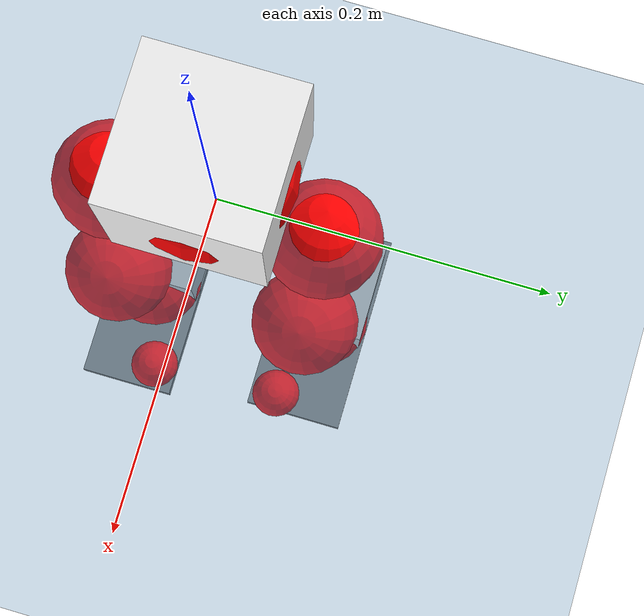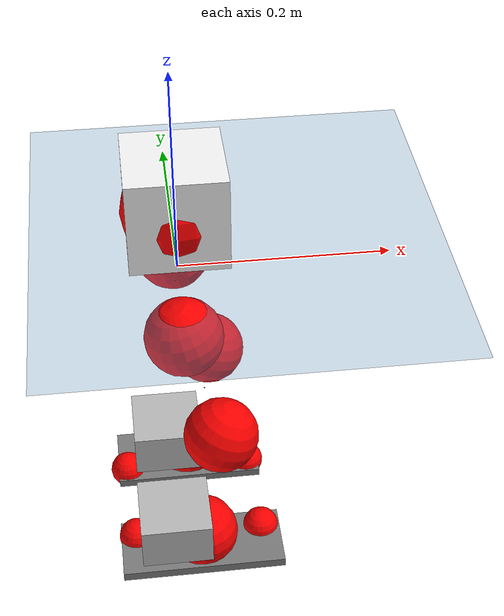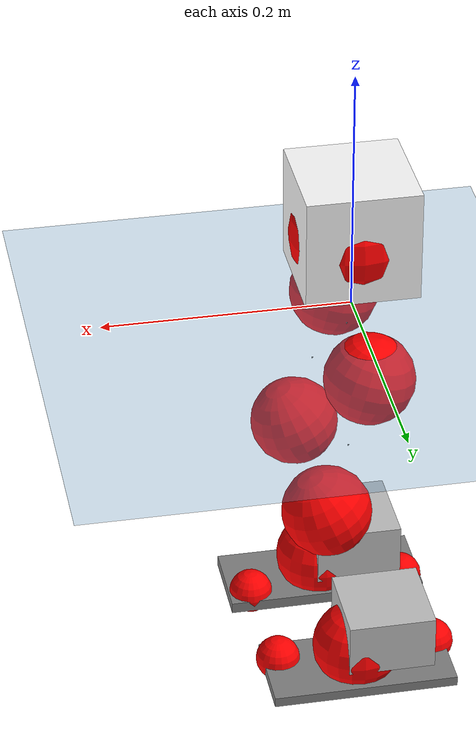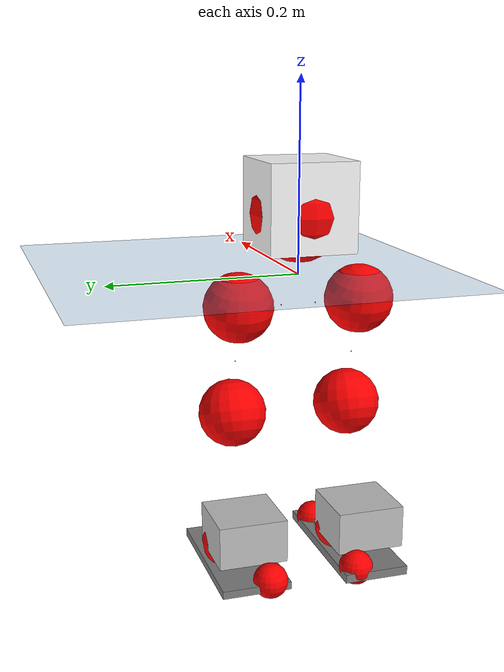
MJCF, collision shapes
<mujoco model="pi_12dof_release_v1">
  <compiler angle="radian" assetdir="assets" balanceinertia="true" inertiafromgeom="false"/>

  <option timestep="0.005" density="1.2" viscosity="2e-05"/>

  <size nkey="1"/>

  <visual>
    <quality shadowsize="8192"/>
    <map shadowclip="0.5"/>
  </visual>

  <default>
    <default class="/">
      <joint armature="0.01" damping="0.01" frictionloss="0.01"/>
      <geom contype="0" conaffinity="0" group="1" solref="-1000 -80"/>
      <site size="0.01 0.005 0.005" group="5"/>
      <general forcelimited="true" biastype="affine" gainprm="20" biasprm="0 -20 -0.5"/>
      <default class="foot">
        <geom size="0.0845 0.036 0.005" type="box" condim="6" group="4" priority="1" friction="0.9 0.2 0.2" solimp="0.015 1 0.005"/>
      </default>
      <default class="reward_collision_sphere">
        <geom group="5" rgba="1 0 0 1"/>
      </default>
    </default>
  </default>

  <asset>
    <texture type="skybox" colorspace="auto" name="//unnamed_texture_0" builtin="gradient" rgb1="0.95 0.95 0.95" rgb2="0.95 0.95 0.95" width="100" height="600"/>
    <texture type="2d" colorspace="auto" name="texplane" builtin="checker" rgb1="0.345 0.575 0.748" rgb2="0.345 0.575 0.748" markrgb="1 1 1" width="512" height="512"/>
    <material name="MatPlane" class="/" texture="texplane" texuniform="true" texrepeat="2 2" specular="0.9"/>
    <mesh name="baselink_1" class="/" file="baselink_1.STL"/>
    <mesh name="r_hip_pitch_link" class="/" file="r_hip_pitch_link.STL"/>
    <mesh name="r_hip_roll_link" class="/" file="r_hip_roll_link.STL"/>
    <mesh name="r_thigh_link" class="/" file="r_thigh_link.STL"/>
    <mesh name="r_calf_link" class="/" file="r_calf_link.STL"/>
    <mesh name="r_ankle_pitch_link" class="/" file="r_ankle_pitch_link.STL"/>
    <mesh name="r_ankle_roll_link" class="/" file="r_ankle_roll_link.STL"/>
    <mesh name="l_hip_pitch_link" class="/" file="l_hip_pitch_link.STL"/>
    <mesh name="l_hip_roll_link" class="/" file="l_hip_roll_link.STL"/>
    <mesh name="l_thigh_link" class="/" file="l_thigh_link.STL"/>
    <mesh name="l_calf_link" class="/" file="l_calf_link.STL"/>
    <mesh name="l_ankle_pitch_link" class="/" file="l_ankle_pitch_link.STL"/>
    <mesh name="l_ankle_roll_link" class="/" file="l_ankle_roll_link.STL"/>
  </asset>

  <worldbody>
    <geom name="floor" class="/" size="100 100 0.125" type="plane" group="0" material="MatPlane"/>
    <light name="toplight_shadow" class="/" pos="0 0 5" dir="0.0990148 0.0990148 -0.990148" type="directional" ambient="0.04 0.04 0.04" diffuse="0.55 0.55 0.55" specular="0.12 0.12 0.12"/>
    <light name="toplight_fill" class="/" pos="0 0 5" dir="0.0990148 0.0990148 -0.990148" type="directional" castshadow="false" ambient="0.04 0.04 0.04" diffuse="0.3 0.3 0.3" specular="0.08 0.08 0.08"/>
    <body name="trunk" pos="0.00054382 -0.000171974 -0.000601282" quat="1 0.000182509 8.66817e-05 -9.31809e-05">
      <inertial pos="0.000996844 -0.00271306 0.0359566" quat="0.691784 0.00805685 0.00971159 0.721994" mass="1.61695" diaginertia="0.00801057 0.0043541 0.00266659"/>
      <joint name="//unnamed_joint_0" type="free"/>
      <geom name="//unnamed_geom_1" class="/" type="mesh" density="0" rgba="1 1 1 1" mesh="baselink_1"/>
      <geom name="//unnamed_geom_2" class="/" size="0.0455128 0.0455128 0.0455128" pos="0 0 0.0729488" type="box" rgba="1 1 1 1"/>
      <geom name="//unnamed_geom_3" class="reward_collision_sphere" size="0.0500641" pos="0 0 0.0638302"/>
      <site name="imu" class="/" pos="-0.011935 -0.0010702 0.00904807" size="0.00910256"/>
      <camera name="track" class="/" pos="0 -1.72116 0" quat="0.707107 0.707107 0 0" mode="trackcom"/>
      <camera name="ego_camera" class="/" pos="0.0718747 0 0.164135" quat="-0.5 -0.5 0.5 0.5"/>
      <body name="r_hip_pitch_link" pos="-0.00128306 -0.018609 -0.0300373" quat="0.992197 1.07036e-05 -0.124681 -6.61812e-06">
        <inertial pos="0.00295031 -0.0479616 -0.000180405" quat="-0.0190887 0.705922 -0.0281032 0.707475" mass="0.271489" diaginertia="8.52304e-05 4.63747e-05 5.15814e-05"/>
        <joint name="r_hip_pitch_joint" class="/" pos="0 0 0" axis="-0.00312031 -0.999967 0.00751248" stiffness="0.0085389" range="-1.74676 1.20697" armature="0.00944272" damping="0" frictionloss="0.00957412"/>
        <geom name="//unnamed_geom_4" class="/" type="mesh" density="0" rgba="0.75294 0.75294 0.75294 1" mesh="r_hip_pitch_link"/>
        <geom name="//unnamed_geom_5" class="/" size="0.000455128 0.000455128 0.000455128" type="box" rgba="0.75294 0.75294 0.75294 1"/>
        <body name="r_hip_roll_link" pos="0.000830744 -0.0487361 0.00107047" quat="1 -1.42479e-05 -4.86035e-05 0.000154174">
          <inertial pos="-0.00192618 3.61741e-05 -0.0542575" quat="0.704916 -0.0787197 -0.0869196 0.69953" mass="0.295046" diaginertia="0.000265006 0.000132152 8.16423e-05"/>
          <joint name="r_hip_roll_joint" class="/" pos="0 0 0" axis="-0.999936 0.00985699 0.00550451" stiffness="0.00184912" range="-0.158587 0.477396" armature="0.00955008" damping="0.00676427" frictionloss="0.00950028"/>
          <geom name="//unnamed_geom_6" class="/" type="mesh" density="0" rgba="0.75294 0.75294 0.75294 1" mesh="r_hip_roll_link"/>
          <geom name="//unnamed_geom_7" class="/" size="0.000455128 0.000455128 0.000455128" type="box" rgba="0.75294 0.75294 0.75294 1"/>
          <geom name="//unnamed_geom_8" class="reward_collision_sphere" size="0.0364103"/>
          <body name="r_thigh_link" pos="0.000771824 -0.000581393 -0.0651684" quat="1 8.18028e-05 -0.000636402 0.000261927">
            <inertial pos="0.000574827 0.000600969 -0.0425405" quat="0.739035 0.67366 0.00194763 -0.00246768" mass="0.0851437" diaginertia="0.000101474 4.44992e-05 3.6921e-05"/>
            <joint name="r_thigh_joint" class="/" pos="0 0 0" axis="-0.0043623 -0.000774004 -0.99999" range="-0.322012 0.577331" armature="0.00884081" damping="0.00191612" frictionloss="0.0090923"/>
            <geom name="//unnamed_geom_9" class="/" type="mesh" density="0" rgba="0.75294 0.75294 0.75294 1" mesh="r_thigh_link"/>
            <geom name="//unnamed_geom_10" class="/" size="0.000455128 0.000455128 0.000455128" type="box" rgba="0.75294 0.75294 0.75294 1"/>
            <body name="r_calf_link" pos="-0.00111066 -0.00160106 -0.0628785" quat="0.947599 -8.64742e-05 0.319464 0.000131301">
              <inertial pos="0.00134192 -0.000868391 -0.063383" quat="0.999982 -0.00440211 -0.000584222 0.00395989" mass="0.620563" diaginertia="0.00288021 0.00165014 0.000110002"/>
              <joint name="r_calf_joint" class="/" pos="0 0 0" axis="-0.00109333 -0.999999 -0.000553775" range="-1.66326 0.641731" armature="0.00891252" damping="0.00976066" frictionloss="0.00938056"/>
              <geom name="//unnamed_geom_11" class="/" type="mesh" density="0" rgba="0.75294 0.75294 0.75294 1" mesh="r_calf_link"/>
              <geom name="//unnamed_geom_12" class="/" size="0.000455128 0.000455128 0.000455128" type="box" rgba="0.75294 0.75294 0.75294 1"/>
              <geom name="//unnamed_geom_13" class="reward_collision_sphere" size="0.0364103"/>
              <body name="r_ankle_pitch_link" pos="0.000763548 0.00297163 -0.127665" quat="0.980067 1.33786e-05 -0.198669 -2.57882e-06">
                <inertial pos="0.00452666 0.00308775 -0.000872521" quat="-9.21713e-05 0.708662 -0.0100084 0.705477" mass="0.127393" diaginertia="0.000247011 0.000103557 7.38459e-05"/>
                <joint name="r_ankle_pitch_joint" class="/" pos="0 0 0" axis="0.00197218 -0.99998 0.00593021" range="-1.28118 0.492797" armature="0.00924015" damping="0" frictionloss="0.00915527"/>
                <geom name="//unnamed_geom_14" class="/" type="mesh" density="0" rgba="0.75294 0.75294 0.75294 1" mesh="r_ankle_pitch_link"/>
                <geom name="//unnamed_geom_15" class="/" size="0.0355 0.0364103 0.0227564" type="box" rgba="0.75294 0.75294 0.75294 1"/>
                <body name="r_ankle_roll_link" pos="0.0753895 0.00121202 -0.00053128" quat="1 3.97688e-05 9.30277e-05 -0.000117138">
                  <inertial pos="-0.0230192 0.000199411 -0.0112506" quat="0.559835 0.43091 0.434618 0.558578" mass="0.391039" diaginertia="0.000888555 0.000479157 0.000179598"/>
                  <joint name="r_ankle_roll_joint" class="/" pos="0 0 0" axis="-0.999993 0.00337991 0.00152411" range="-0.161253 0.131668" armature="0.00853203" damping="0" frictionloss="0.00986175"/>
                  <geom name="//unnamed_geom_16" class="/" type="mesh" density="0" rgba="0.75294 0.75294 0.75294 1" mesh="r_ankle_roll_link"/>
                  <geom name="//unnamed_geom_17" class="/" type="mesh" rgba="0.75294 0.75294 0.75294 1" mesh="r_ankle_roll_link"/>
                  <geom name="right_foot" class="foot" size="0.0824687 0.0347047 0.00466903" pos="-0.0488748 0 -0.0401218"/>
                  <geom name="//unnamed_geom_19" class="reward_collision_sphere" size="0.0364103" pos="-0.0479165 0 -0.0182372"/>
                  <geom name="//unnamed_geom_20" class="reward_collision_sphere" size="0.0182051" pos="0.0143749 0.0172116 -0.0364744"/>
                  <geom name="//unnamed_geom_21" class="reward_collision_sphere" size="0.0182051" pos="-0.115 0.0172116 -0.0364744"/>
                  <site name="right_foot" class="foot" pos="-0.0488748 0 -0.0401218" size="0.00910256"/>
                </body>
              </body>
            </body>
          </body>
        </body>
      </body>
      <body name="l_hip_pitch_link" pos="-0.00210627 0.0189834 -0.029832" quat="0.992228 -0.000185481 -0.124435 3.17228e-05">
        <inertial pos="0.000125899 0.0480524 4.04964e-05" quat="-0.0386207 0.705675 0.0297457 0.706856" mass="0.291462" diaginertia="0.000102969 5.001e-05 6.08145e-05"/>
        <joint name="l_hip_pitch_joint" class="/" pos="0 0 0" axis="0.00117888 0.999998 -0.00144193" stiffness="0.00212701" range="-1.28451 1.7419" armature="0.0101201" damping="0.000718418" frictionloss="0.00920134"/>
        <geom name="//unnamed_geom_22" class="/" type="mesh" density="0" rgba="0.75294 0.75294 0.75294 1" mesh="l_hip_pitch_link"/>
        <geom name="//unnamed_geom_23" class="/" size="0.000455128 0.000455128 0.000455128" type="box" rgba="0.75294 0.75294 0.75294 1"/>
        <body name="l_hip_roll_link" pos="0.000525932 0.0458183 5.80352e-06" quat="1 -0.000111896 9.38617e-05 0.00011569">
          <inertial pos="-0.000843992 0.0012017 -0.0554638" quat="0.700114 -0.075028 -0.0754682 0.706056" mass="0.292585" diaginertia="0.000269741 0.000130946 7.99818e-05"/>
          <joint name="l_hip_roll_joint" class="/" pos="0 0 0" axis="-0.999916 -0.012559 -0.00326515" range="-0.453275 0.118937" armature="0.00911053" damping="0.00975459" frictionloss="0.00827951"/>
          <geom name="//unnamed_geom_24" class="/" type="mesh" density="0" rgba="0.75294 0.75294 0.75294 1" mesh="l_hip_roll_link"/>
          <geom name="//unnamed_geom_25" class="/" size="0.000455128 0.000455128 0.000455128" type="box" rgba="0.75294 0.75294 0.75294 1"/>
          <geom name="//unnamed_geom_26" class="reward_collision_sphere" size="0.0364103"/>
          <body name="l_thigh_link" pos="0.000144454 -0.00120373 -0.0631368" quat="1 -0.000120934 -0.00047989 4.46141e-05">
            <inertial pos="0.000458238 -0.00132039 -0.0442438" quat="0.68358 0.729854 -0.0046767 0.00295393" mass="0.084981" diaginertia="0.000101505 4.4824e-05 3.53676e-05"/>
            <joint name="l_thigh_joint" class="/" pos="0 0 0" axis="-0.00327205 -0.00504654 -0.999982" range="-0.601818 0.296981" armature="0.00884447" damping="0" frictionloss="0.00918448"/>
            <geom name="//unnamed_geom_27" class="/" type="mesh" density="0" rgba="0.75294 0.75294 0.75294 1" mesh="l_thigh_link"/>
            <geom name="//unnamed_geom_28" class="/" size="0.000455128 0.000455128 0.000455128" type="box" rgba="0.75294 0.75294 0.75294 1"/>
            <body name="l_calf_link" pos="0.000403819 -0.00147183 -0.0642677" quat="0.947481 -0.000111755 0.319813 -0.000352917">
              <inertial pos="-0.00178753 0.00300122 -0.0626135" quat="0.99996 0.00391565 -0.00378268 0.00715197" mass="0.618885" diaginertia="0.00286094 0.00166092 0.000107659"/>
              <joint name="l_calf_joint" class="/" pos="0 0 0" axis="-0.00402533 0.999992 0.000549236" range="-0.670005 1.60278" armature="0.00831991" damping="0.00589077" frictionloss="0.00825812"/>
              <geom name="//unnamed_geom_29" class="/" type="mesh" density="0" rgba="0.75294 0.75294 0.75294 1" mesh="l_calf_link"/>
              <geom name="//unnamed_geom_30" class="/" size="0.000455128 0.000455128 0.000455128" type="box" rgba="0.75294 0.75294 0.75294 1"/>
              <geom name="//unnamed_geom_31" class="reward_collision_sphere" size="0.0364103"/>
              <body name="l_ankle_pitch_link" pos="0.0010565 0.00191711 -0.125668" quat="0.980052 -0.000131294 -0.198742 0.000156953">
                <inertial pos="0.00554173 5.40186e-05 -1.69763e-05" quat="-0.00196271 0.707086 0.00259808 0.70712" mass="0.124895" diaginertia="0.000236127 0.000101597 7.27035e-05"/>
                <joint name="l_ankle_pitch_joint" class="/" pos="0 0 0" axis="-0.00249218 0.999989 -0.00398535" range="-0.499779 1.29359" armature="0.0091896" damping="0" frictionloss="0.0102429"/>
                <geom name="//unnamed_geom_32" class="/" type="mesh" density="0" rgba="0.75294 0.75294 0.75294 1" mesh="l_ankle_pitch_link"/>
                <geom name="//unnamed_geom_33" class="/" size="0.0355 0.0364103 0.0227564" type="box" rgba="0.75294 0.75294 0.75294 1"/>
                <body name="l_ankle_roll_link" pos="0.070243 0.00221427 -0.000385765" quat="1 4.52307e-05 -0.000278655 0.000112159">
                  <inertial pos="-0.0226001 -0.000213774 -0.0130764" quat="0.555525 0.434307 0.43894 0.556867" mass="0.395829" diaginertia="0.000923818 0.000498991 0.000180209"/>
                  <joint name="l_ankle_roll_joint" class="/" pos="0 0 0" axis="-0.999995 -0.00277189 0.00156646" stiffness="0.00088812" range="-0.156881 0.152594" armature="0.00956447" damping="0.00931603" frictionloss="0.00807113"/>
                  <geom name="//unnamed_geom_34" class="/" type="mesh" density="0" rgba="0.75294 0.75294 0.75294 1" mesh="l_ankle_roll_link"/>
                  <geom name="//unnamed_geom_35" class="/" type="mesh" rgba="0.75294 0.75294 0.75294 1" mesh="l_ankle_roll_link"/>
                  <geom name="left_foot" class="foot" size="0.0759577 0.0364608 0.00413599" pos="-0.0488748 0 -0.0401218"/>
                  <geom name="//unnamed_geom_37" class="reward_collision_sphere" size="0.0364103" pos="-0.0479165 0 -0.0182372"/>
                  <geom name="//unnamed_geom_38" class="reward_collision_sphere" size="0.0182051" pos="0.0143749 -0.0172116 -0.0364744"/>
                  <geom name="//unnamed_geom_39" class="reward_collision_sphere" size="0.0182051" pos="-0.115 -0.0172116 -0.0364744"/>
                  <site name="left_foot" class="foot" pos="-0.0488748 0 -0.0401218" size="0.00910256"/>
                </body>
              </body>
            </body>
          </body>
        </body>
      </body>
    </body>
  </worldbody>

  <contact>
    <pair class="/" geom1="floor" geom2="right_foot" name="//unnamed_contact_1"/>
    <pair class="/" geom1="floor" geom2="left_foot" name="//unnamed_contact_0"/>
  </contact>

  <actuator>
    <general name="r_hip_pitch_joint" class="/" joint="r_hip_pitch_joint" forcerange="-18.4011 18.4011" gainprm="18.1819" biasprm="0 -18.1819 -0.479794"/>
    <general name="r_hip_roll_joint" class="/" joint="r_hip_roll_joint" forcerange="-18.0584 18.0584" gainprm="18.1819" biasprm="0 -18.1819 -0.479794"/>
    <general name="r_thigh_joint" class="/" joint="r_thigh_joint" forcerange="-19.8795 19.8795" gainprm="18.1819" biasprm="0 -18.1819 -0.479794"/>
    <general name="r_calf_joint" class="/" joint="r_calf_joint" forcerange="-19.2237 19.2237" gainprm="18.1819" biasprm="0 -18.1819 -0.479794"/>
    <general name="r_ankle_pitch_joint" class="/" joint="r_ankle_pitch_joint" forcerange="-18.0612 18.0612" gainprm="18.1819" biasprm="0 -18.1819 -0.479794"/>
    <general name="r_ankle_roll_joint" class="/" joint="r_ankle_roll_joint" forcerange="-19.0379 19.0379" gainprm="18.1819" biasprm="0 -18.1819 -0.479794"/>
    <general name="l_hip_pitch_joint" class="/" joint="l_hip_pitch_joint" forcerange="-19.0503 19.0503" gainprm="18.1819" biasprm="0 -18.1819 -0.479794"/>
    <general name="l_hip_roll_joint" class="/" joint="l_hip_roll_joint" forcerange="-19.2853 19.2853" gainprm="18.1819" biasprm="0 -18.1819 -0.479794"/>
    <general name="l_thigh_joint" class="/" joint="l_thigh_joint" forcerange="-19.6455 19.6455" gainprm="18.1819" biasprm="0 -18.1819 -0.479794"/>
    <general name="l_calf_joint" class="/" joint="l_calf_joint" forcerange="-19.0364 19.0364" gainprm="18.1819" biasprm="0 -18.1819 -0.479794"/>
    <general name="l_ankle_pitch_joint" class="/" joint="l_ankle_pitch_joint" forcerange="-18.5402 18.5402" gainprm="18.1819" biasprm="0 -18.1819 -0.479794"/>
    <general name="l_ankle_roll_joint" class="/" joint="l_ankle_roll_joint" forcerange="-17.8488 17.8488" gainprm="18.1819" biasprm="0 -18.1819 -0.479794"/>
  </actuator>

  <sensor>
    <gyro site="imu" name="imu_angular_velocity"/>
    <velocimeter site="imu" name="imu_linear_velocity"/>
    <framelinvel objtype="site" objname="left_foot" name="left_foot_global_linear_velocity"/>
    <framelinvel objtype="site" objname="right_foot" name="right_foot_global_linear_velocity"/>
  </sensor>

  <keyframe>
    <key name="home" qpos="0 0 0.291 1 0 0 0 0.4 0 0 -0.8 0.4 0 -0.4 0 0 0.8 -0.4 0"/>
  </keyframe>
</mujoco>
